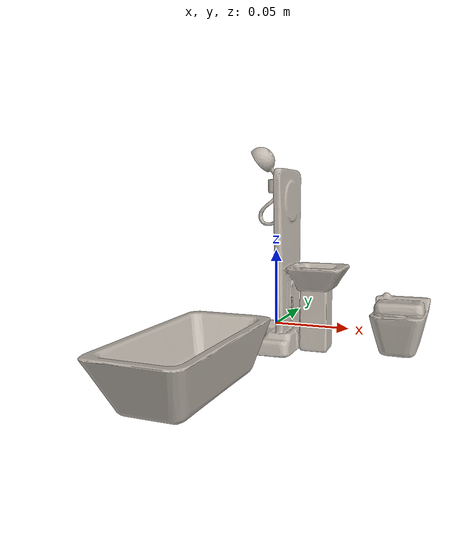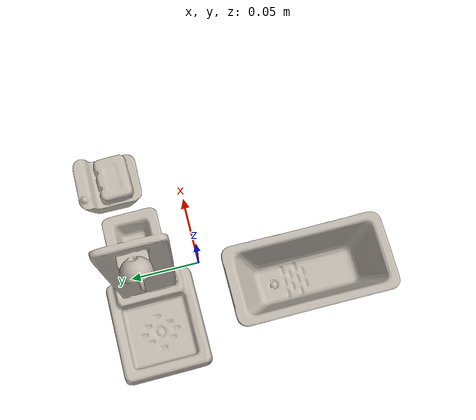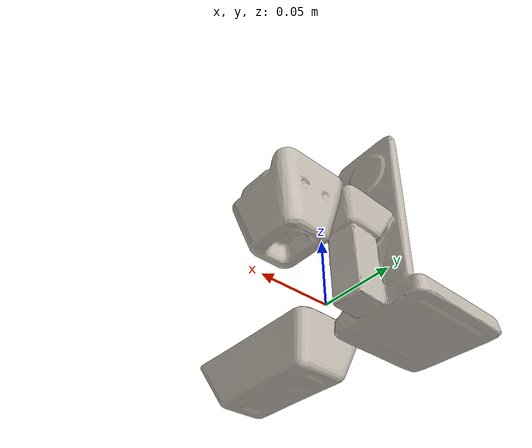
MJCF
<mujoco model="04">
  <default>
    <default class="04/visual">
      <geom group="2" type="mesh" contype="0" conaffinity="0"/>
    </default>
    <default class="04/collision">
      <geom group="3" type="mesh"/>
    </default>
  </default>
  <asset>
    <texture type="2d" name="img4" file="objects/04/img4.png"/>
    <material name="material_0.004" texture="img4" specular="0.0" shininess="0.0"/>
    <mesh file="objects/04/04.obj"/>
  </asset>
  <worldbody>
    <body name="04">
      <joint name="obj04" type="free"/>
      <geom material="material_0.004" mesh="04" class="04/visual"/>
      <geom mesh="04" class="04/collision" mass="0.5"/>
    </body>
  </worldbody>
</mujoco>
